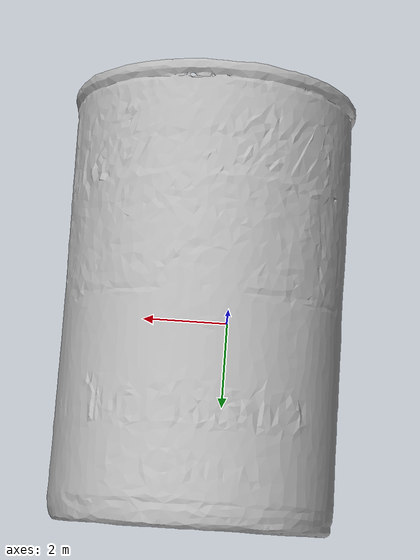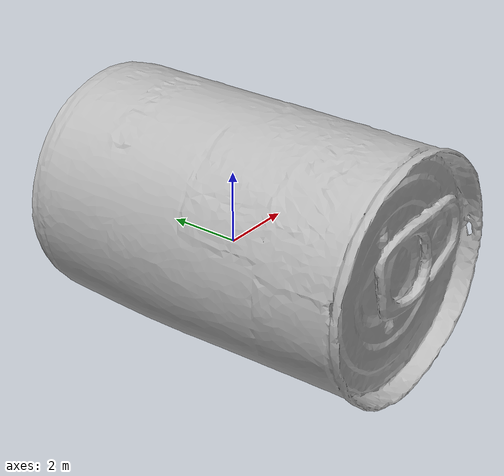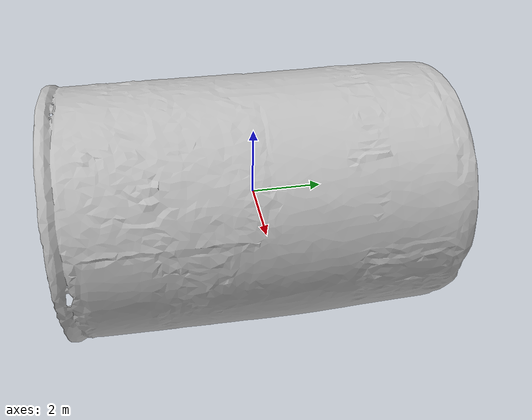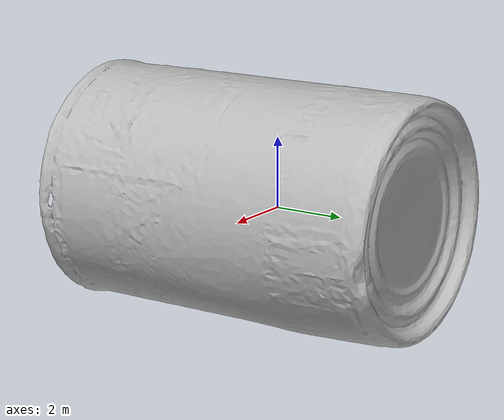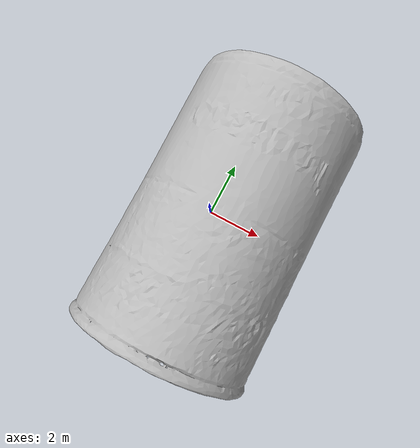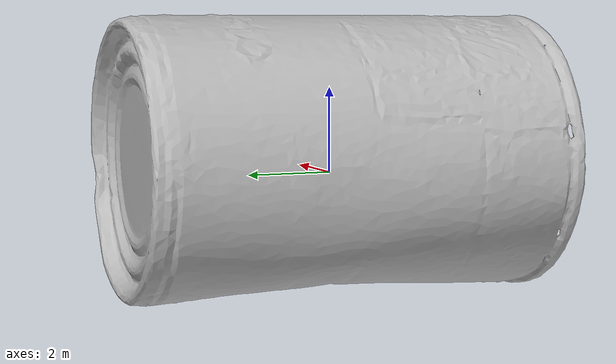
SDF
<?xml version="1.0" ?>
<sdf version="1.7">
	<model name="tuna_fish_can">
		<link name="base">
			<visual name="tuna_fish_can_visual">
				<pose>0.6 -0.2 0.34 0 0 0</pose>
				<geometry>
					<mesh>
						<scale>1 1 1</scale>
						<uri>meshes/textured.obj</uri>
					</mesh>
				</geometry>
			</visual>
		</link>
	</model>
</sdf>
